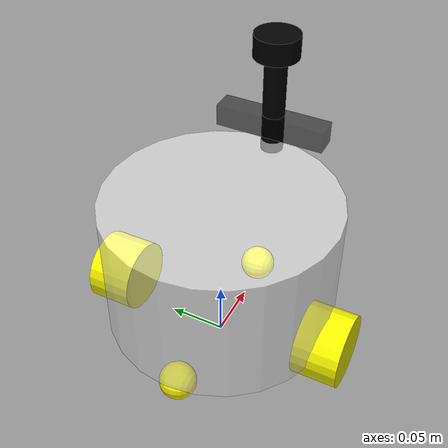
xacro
<?xml version="1.0"?>
<robot xmlns:xacro="http://www.ros.org/wiki/xacro" name="fish_bot">
    <!-- 基础部分 -->
    <xacro:include filename="$(find fishbot_description)/urdf/fishbot/base.urdf.xacro"/>
    <!-- 传感器部分 -->
    <xacro:include filename="$(find fishbot_description)/urdf/fishbot/sensor/imu.urdf.xacro"/>
    <xacro:include filename="$(find fishbot_description)/urdf/fishbot/sensor/camera.urdf.xacro"/>
    <xacro:include filename="$(find fishbot_description)/urdf/fishbot/sensor/laser.urdf.xacro"/>
    <!-- 执行器部分 -->
    <xacro:include filename="$(find fishbot_description)/urdf/fishbot/actuator/wheel.urdf.xacro"/>
    <xacro:include filename="$(find fishbot_description)/urdf/fishbot/actuator/caster.urdf.xacro"/>

    <xacro:base_xacro length="0.12" radius="0.10"/>
    <xacro:imu_xacro xyz="0.0 0.0 0.02"/>
    <xacro:camera_xacro xyz="0.10 0.0 0.075"/>
    <xacro:laser_xacro xyz="0.10 0.0 0.10"/>
    <xacro:wheel_xacro wheel_name="left_wheel" xyz="0.0 0.10 -0.06"/>
    <xacro:wheel_xacro wheel_name="right_wheel" xyz="0.0 -0.10 -0.06"/>
    <xacro:caster_xacro caster_name="front_caster" xyz="0.08 0.0 -0.076"/>
    <xacro:caster_xacro caster_name="back_caster" xyz="-0.08 0.0 -0.076"/>
</robot>

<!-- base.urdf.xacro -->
<robot xmlns:xacro="http://www.ros.org/wiki/xacro">
    <xacro:include filename="$(find fishbot_description)/urdf/fishbot/common_inertia.xacro"/>

    <xacro:macro name="base_xacro" params="length radius">
        <link name="base_footprint" />
        <!-- 机器人的身体部分 -->
        <link name="base_link">
            <!-- 部件外观描述 -->
            <visual>
                <!-- 沿着自己几何中心的偏移和旋转量 -->
                <origin xyz="0.0 0.0 0.0" rpy="0.0 0.0 0.0"/>
                <!-- 几何形状 -->
                <geometry>
                    <!-- 圆柱体,半径0.10 高度0.12 -->
                    <cylinder radius="${radius}" length="${length}"/>
                </geometry>
                <!-- 材质颜色 -->
                <material name="white">
                    <color rgba="1.0 1.0 1.0 0.5"/>
                </material>
            </visual>
            <collision>
                <!-- 沿着自己几何中心的偏移和旋转量 -->
                <origin xyz="0.0 0.0 0.0" rpy="0.0 0.0 0.0"/>
                <!-- 几何形状 -->
                <geometry>
                    <!-- 圆柱体,半径0.10 高度0.12 -->
                    <cylinder radius="${radius}" length="${length}"/>
                </geometry>
                <!-- 材质颜色 -->
                <material name="white">
                    <color rgba="1.0 1.0 1.0 0.5"/>
                </material>
            </collision>

            <xacro:cylinder_inertia m="1.0" r="${radius}" h="${length}" />
        </link>

        <joint name="joint_name" type="fixed">
            <origin xyz="0.0 0.0 ${length/2.0+0.032-0.001}" rpy="0.0 0.0 0.0"/>
            <parent link="base_footprint"/>
            <child link="base_link"/>
        </joint>

    </xacro:macro>

</robot>

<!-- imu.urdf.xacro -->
<robot xmlns:xacro="http://www.ros.org/wiki/xacro">
<xacro:include filename="$(find fishbot_description)/urdf/fishbot/common_inertia.xacro"/>
    <xacro:macro name="imu_xacro" params="xyz">
        <!-- 机器人的IMU部件，惯性测量传感器 -->
        <link name="imu_link">
            <!-- 部件外观描述 -->
            <visual>
                <!-- 沿着自己几何中心的偏移和旋转量 -->
                <origin xyz="0.0 0.0 0.0" rpy="0.0 0.0 0.0"/>
                <!-- 几何形状 -->
                <geometry>
                    <box size="0.02 0.02 0.02"/>
                </geometry>
                <!-- 材质颜色 -->
                <material name="black">
                    <color rgba="0.0 0.0 0.0 0.5"/>
                </material>
            </visual>

            <collision>
                <!-- 沿着自己几何中心的偏移和旋转量 -->
                <origin xyz="0.0 0.0 0.0" rpy="0.0 0.0 0.0"/>
                <!-- 几何形状 -->
                <geometry>
                    <box size="0.02 0.02 0.02"/>
                </geometry>
                <!-- 材质颜色 -->
                <material name="black">
                    <color rgba="0.0 0.0 0.0 0.5"/>
                </material>
            </collision>
            <xacro:box_inertia m="0.05" w="0.02" h="0.02" d="0.02" />
        </link>

    <!-- 机器人的关节，用于组合机器人的部件 -->
    <joint name="imu_joint" type="fixed">
        <origin xyz="${xyz}" rpy="0.0 0.0 0.0"/>
        <parent link="base_link"/>
        <child link="imu_link"/>
    </joint>
    </xacro:macro>

</robot>

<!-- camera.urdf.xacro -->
<robot xmlns:xacro="http://www.ros.org/wiki/xacro">
<xacro:include filename="$(find fishbot_description)/urdf/fishbot/common_inertia.xacro"/>
    <xacro:macro name="camera_xacro" params="xyz">
        <!-- 机器人的IMU部件，惯性测量传感器 -->
        <link name="camera_link">
            <!-- 部件外观描述 -->
            <visual>
                <!-- 沿着自己几何中心的偏移和旋转量 -->
                <origin xyz="0.0 0.0 0.0" rpy="0.0 0.0 0.0"/>
                <!-- 几何形状 -->
                <geometry>
                    <box size="0.02 0.10 0.02"/>
                </geometry>
                <!-- 材质颜色 -->
                <material name="black">
                    <color rgba="0.0 0.0 0.0 0.5"/>
                </material>
            </visual>

            <collision>
                <!-- 沿着自己几何中心的偏移和旋转量 -->
                <origin xyz="0.0 0.0 0.0" rpy="0.0 0.0 0.0"/>
                <!-- 几何形状 -->
                <geometry>
                    <box size="0.02 0.10 0.02"/>
                </geometry>
                <!-- 材质颜色 -->
                <material name="black">
                    <color rgba="0.0 0.0 0.0 0.5"/>
                </material>
            </collision>
            <xacro:box_inertia m="0.1" w="0.02" h="0.10" d="0.02" />
        </link>

    <!-- 机器人的关节，用于组合机器人的部件 -->
    <joint name="camera_joint" type="fixed">
        <origin xyz="${xyz}" rpy="0.0 0.0 0.0"/>
        <parent link="base_link"/>
        <child link="camera_link"/>
    </joint>
    </xacro:macro>

</robot>

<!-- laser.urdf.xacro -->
<robot xmlns:xacro="http://www.ros.org/wiki/xacro">
<xacro:include filename="$(find fishbot_description)/urdf/fishbot/common_inertia.xacro"/>
    <xacro:macro name="laser_xacro" params="xyz">
        <!-- 雷达支撑杆 -->
        <link name="laser_cylinder_link">
            <!-- 部件外观描述 -->
            <visual>
                <!-- 沿着自己几何中心的偏移和旋转量 -->
                <origin xyz="0.0 0.0 0.0" rpy="0.0 0.0 0.0"/>
                <!-- 几何形状 -->
                <geometry>
                    <cylinder radius="0.01" length="0.10"/>
                </geometry>
                <!-- 材质颜色 -->
                <material name="black">
                    <color rgba="0.0 0.0 0.0 1.0"/>
                </material>
            </visual>

            <collision>
                <!-- 沿着自己几何中心的偏移和旋转量 -->
                <origin xyz="0.0 0.0 0.0" rpy="0.0 0.0 0.0"/>
                <!-- 几何形状 -->
                <geometry>
                    <cylinder radius="0.01" length="0.10"/>
                </geometry>
                <!-- 材质颜色 -->
                <material name="black">
                    <color rgba="0.0 0.0 0.0 1.0"/>
                </material>
            </collision>
            <xacro:cylinder_inertia m="0.05" r="0.01" h="0.10" />
        </link>

        <!-- 雷达 -->
        <link name="laser_link">
            <!-- 部件外观描述 -->
            <visual>
                <!-- 沿着自己几何中心的偏移和旋转量 -->
                <origin xyz="0.0 0.0 0.0" rpy="0.0 0.0 0.0"/>
                <!-- 几何形状 -->
                <geometry>
                    <cylinder radius="0.02" length="0.02"/>
                </geometry>
                <!-- 材质颜色 -->
                <material name="black">
                    <color rgba="0.0 0.0 0.0 1.0"/>
                </material>
            </visual>

            <collision>
                <!-- 沿着自己几何中心的偏移和旋转量 -->
                <origin xyz="0.0 0.0 0.0" rpy="0.0 0.0 0.0"/>
                <!-- 几何形状 -->
                <geometry>
                    <cylinder radius="0.02" length="0.02"/>
                </geometry>
                <!-- 材质颜色 -->
                <material name="black">
                    <color rgba="0.0 0.0 0.0 1.0"/>
                </material>
            </collision>
            <xacro:cylinder_inertia m="0.10" r="0.02" h="0.02" />
        </link>

        <!-- 机器人的关节，用于组合机器人的部件 -->
        <joint name="laser_joint" type="fixed">
            <origin xyz="0.0 0.0 0.05" rpy="0.0 0.0 0.0"/>
            <parent link="laser_cylinder_link"/>
            <child link="laser_link"/>
        </joint>

        <joint name="laser_cylinder_joint" type="fixed">
            <origin xyz="${xyz}" rpy="0.0 0.0 0.0"/>
            <parent link="base_link"/>
            <child link="laser_cylinder_link"/>
        </joint>
    </xacro:macro>

</robot>

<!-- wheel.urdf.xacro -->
<robot xmlns:xacro="http://www.ros.org/wiki/xacro">
<xacro:include filename="$(find fishbot_description)/urdf/fishbot/common_inertia.xacro"/>
    <xacro:macro name="wheel_xacro" params="wheel_name xyz">
        <!-- 机器人的IMU部件，惯性测量传感器 -->
        <link name="${wheel_name}_link">
            <!-- 部件外观描述 -->
            <visual>
                <!-- 沿着自己几何中心的偏移和旋转量 -->
                <origin xyz="0.0 0.0 0.0" rpy="1.57079 0.0 0.0"/>
                <!-- 几何形状 -->
                <geometry>
                    <cylinder radius="0.032" length="0.04"/>
                </geometry>
                <!-- 材质颜色 -->
                <material name="yellow">
                    <color rgba="1.0 1.0 0.0 1.0"/>
                </material>
            </visual>

            <collision>
                <!-- 沿着自己几何中心的偏移和旋转量 -->
                <origin xyz="0.0 0.0 0.0" rpy="1.57079 0.0 0.0"/>
                <!-- 几何形状 -->
                <geometry>
                    <cylinder radius="0.032" length="0.04"/>
                </geometry>
                <!-- 材质颜色 -->
                <material name="yellow">
                    <color rgba="1.0 1.0 0.0 1.0"/>
                </material>
            </collision>
            <xacro:cylinder_inertia m="0.05" r="${radius}" h="${length}" />
        </link>

    <!-- 机器人的关节，用于组合机器人的部件 -->
    <joint name="${wheel_name}_joint" type="continuous">
        <origin xyz="${xyz}" rpy="0.0 0.0 0.0"/>
        <parent link="base_link"/>
        <child link="${wheel_name}_link"/>
        <axis xyz="0.0 1.0 0.0"/>
    </joint>
    </xacro:macro>

</robot>

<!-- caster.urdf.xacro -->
<robot xmlns:xacro="http://www.ros.org/wiki/xacro">
<xacro:include filename="$(find fishbot_description)/urdf/fishbot/common_inertia.xacro"/>
    <xacro:macro name="caster_xacro" params="caster_name xyz">
        <!-- 机器人的IMU部件，惯性测量传感器 -->
        <link name="${caster_name}_link">
            <!-- 部件外观描述 -->
            <visual>
                <!-- 沿着自己几何中心的偏移和旋转量 -->
                <origin xyz="0.0 0.0 0.0" rpy="1.57079 0.0 0.0"/>
                <!-- 几何形状 -->
                <geometry>
                    <sphere radius="0.016"/>
                </geometry>
                <!-- 材质颜色 -->
                <material name="yellow">
                    <color rgba="1.0 1.0 0.0 1.0"/>
                </material>
            </visual>

            <collision>
                <!-- 沿着自己几何中心的偏移和旋转量 -->
                <origin xyz="0.0 0.0 0.0" rpy="1.57079 0.0 0.0"/>
                <!-- 几何形状 -->
                <geometry>
                    <sphere radius="0.016"/>
                </geometry>
                <!-- 材质颜色 -->
                <material name="yellow">
                    <color rgba="1.0 1.0 0.0 1.0"/>
                </material>
            </collision>
        </link>

    <!-- 机器人的关节，用于组合机器人的部件 -->
    <joint name="${caster_name}_joint" type="fixed">
        <origin xyz="${xyz}" rpy="0.0 0.0 0.0"/>
        <parent link="base_link"/>
        <child link="${caster_name}_link"/>
        <axis xyz="0.0 1.0 0.0"/>
    </joint>
    <xacro:sphere_inertia m="0.05" r="0.016" />
    </xacro:macro>

</robot>
